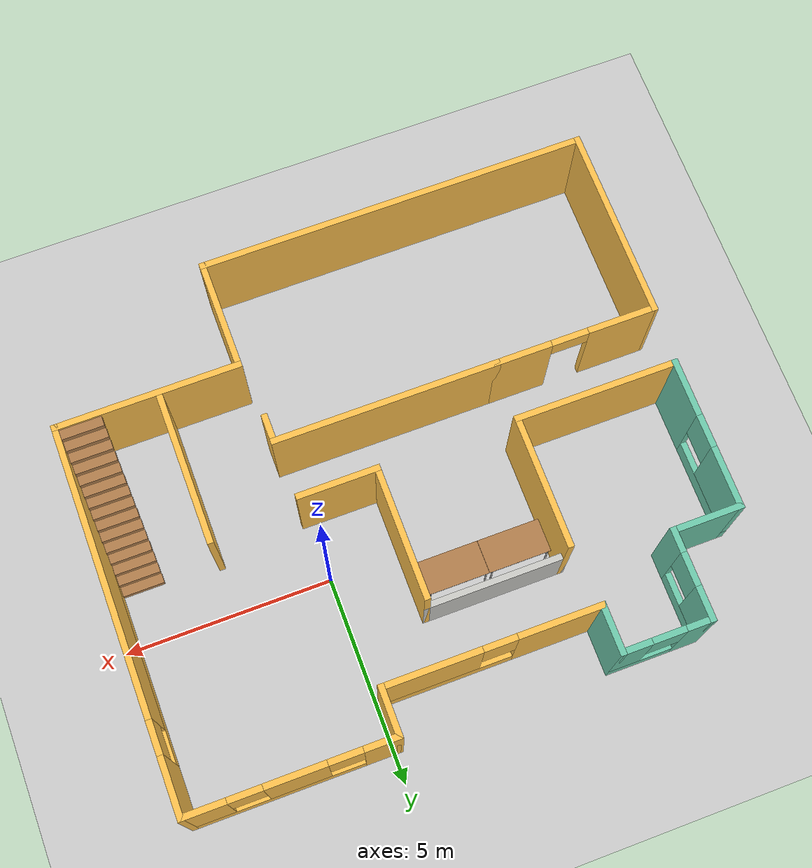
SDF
<sdf version="1.6">
 <world name="default">
  <model name="ground_plane">
   <static>1</static>
   <link name="link">
    <collision name="collision">
     <geometry><plane><normal>0 0 1</normal><size>100 100</size></plane></geometry>
     <surface><friction><ode><mu>100</mu><mu2>50</mu2></ode></friction></surface>
    </collision>
    <visual name="visual">
     <cast_shadows>0</cast_shadows>
     <geometry><plane><normal>0 0 1</normal><size>100 100</size></plane></geometry>
     <material>
      <script><uri>file://media/materials/scripts/gazebo.material</uri><name>Gazebo/Grey</name></script>
     </material>
    </visual>
   </link>
  </model>
  <model name="building">
   <pose>-2.14951 -1.63001 0 0 -0 0</pose>
   <link name="Stairs_0">
    <visual name="Stairs_0_Visual_0">
     <pose>6.28895 0.235116 0.083333 0 -0 0</pose>
     <geometry><box><size>1 0.233333 0.166667</size></box></geometry>
     <material>
      <script><uri>file://media/materials/scripts/gazebo.material</uri><name>Gazebo/Wood</name></script>
      <ambient>0.996078 0.47451 0.0196078 1</ambient>
     </material>
     <meta><layer>0</layer></meta>
    </visual>
    <collision name="Stairs_0_Collision_0">
     <geometry><box><size>1 0.233333 0.166667</size></box></geometry>
     <pose>6.28895 0.235116 0.083333 0 -0 0</pose>
    </collision>
    <visual name="Stairs_0_Visual_1">
     <pose>6.28895 0.001782 0.25 0 -0 0</pose>
     <geometry><box><size>1 0.233333 0.166667</size></box></geometry>
     <material>
      <script><uri>file://media/materials/scripts/gazebo.material</uri><name>Gazebo/Wood</name></script>
      <ambient>0.996078 0.47451 0.0196078 1</ambient>
     </material>
     <meta><layer>0</layer></meta>
    </visual>
    <collision name="Stairs_0_Collision_1">
     <geometry><box><size>1 0.233333 0.166667</size></box></geometry>
     <pose>6.28895 0.001782 0.25 0 -0 0</pose>
    </collision>
    <visual name="Stairs_0_Visual_2">
     <pose>6.28895 -0.231551 0.416667 0 -0 0</pose>
     <geometry><box><size>1 0.233333 0.166667</size></box></geometry>
     <material>
      <script><uri>file://media/materials/scripts/gazebo.material</uri><name>Gazebo/Wood</name></script>
      <ambient>0.996078 0.47451 0.0196078 1</ambient>
     </material>
     <meta><layer>0</layer></meta>
    </visual>
    <collision name="Stairs_0_Collision_2">
     <geometry><box><size>1 0.233333 0.166667</size></box></geometry>
     <pose>6.28895 -0.231551 0.416667 0 -0 0</pose>
    </collision>
    <visual name="Stairs_0_Visual_3">
     <pose>6.28895 -0.464884 0.583333 0 -0 0</pose>
     <geometry><box><size>1 0.233333 0.166667</size></box></geometry>
     <material>
      <script><uri>file://media/materials/scripts/gazebo.material</uri><name>Gazebo/Wood</name></script>
      <ambient>0.996078 0.47451 0.0196078 1</ambient>
     </material>
     <meta><layer>0</layer></meta>
    </visual>
    <collision name="Stairs_0_Collision_3">
     <geometry><box><size>1 0.233333 0.166667</size></box></geometry>
     <pose>6.28895 -0.464884 0.583333 0 -0 0</pose>
    </collision>
    <visual name="Stairs_0_Visual_4">
     <pose>6.28895 -0.698218 0.75 0 -0 0</pose>
     <geometry><box><size>1 0.233333 0.166667</size></box></geometry>
     <material>
      <script><uri>file://media/materials/scripts/gazebo.material</uri><name>Gazebo/Wood</name></script>
      <ambient>0.996078 0.47451 0.0196078 1</ambient>
     </material>
     <meta><layer>0</layer></meta>
    </visual>
    <collision name="Stairs_0_Collision_4">
     <geometry><box><size>1 0.233333 0.166667</size></box></geometry>
     <pose>6.28895 -0.698218 0.75 0 -0 0</pose>
    </collision>
    <visual name="Stairs_0_Visual_5">
     <pose>6.28895 -0.931551 0.916667 0 -0 0</pose>
     <geometry><box><size>1 0.233333 0.166667</size></box></geometry>
     <material>
      <script><uri>file://media/materials/scripts/gazebo.material</uri><name>Gazebo/Wood</name></script>
      <ambient>0.996078 0.47451 0.0196078 1</ambient>
     </material>
     <meta><layer>0</layer></meta>
    </visual>
    <collision name="Stairs_0_Collision_5">
     <geometry><box><size>1 0.233333 0.166667</size></box></geometry>
     <pose>6.28895 -0.931551 0.916667 0 -0 0</pose>
    </collision>
    <visual name="Stairs_0_Visual_6">
     <pose>6.28895 -1.16488 1.08333 0 -0 0</pose>
     <geometry><box><size>1 0.233333 0.166667</size></box></geometry>
     <material>
      <script><uri>file://media/materials/scripts/gazebo.material</uri><name>Gazebo/Wood</name></script>
      <ambient>0.996078 0.47451 0.0196078 1</ambient>
     </material>
     <meta><layer>0</layer></meta>
    </visual>
    <collision name="Stairs_0_Collision_6">
     <geometry><box><size>1 0.233333 0.166667</size></box></geometry>
     <pose>6.28895 -1.16488 1.08333 0 -0 0</pose>
    </collision>
    <visual name="Stairs_0_Visual_7">
     <pose>6.28895 -1.39822 1.25 0 -0 0</pose>
     <geometry><box><size>1 0.233333 0.166667</size></box></geometry>
     <material>
      <script><uri>file://media/materials/scripts/gazebo.material</uri><name>Gazebo/Wood</name></script>
      <ambient>0.996078 0.47451 0.0196078 1</ambient>
     </material>
     <meta><layer>0</layer></meta>
    </visual>
    <collision name="Stairs_0_Collision_7">
     <geometry><box><size>1 0.233333 0.166667</size></box></geometry>
     <pose>6.28895 -1.39822 1.25 0 -0 0</pose>
    </collision>
    <visual name="Stairs_0_Visual_8">
     <pose>6.28895 -1.63155 1.41667 0 -0 0</pose>
     <geometry><box><size>1 0.233333 0.166667</size></box></geometry>
     <material>
      <script><uri>file://media/materials/scripts/gazebo.material</uri><name>Gazebo/Wood</name></script>
      <ambient>0.996078 0.47451 0.0196078 1</ambient>
     </material>
     <meta><layer>0</layer></meta>
    </visual>
    <collision name="Stairs_0_Collision_8">
     <geometry><box><size>1 0.233333 0.166667</size></box></geometry>
     <pose>6.28895 -1.63155 1.41667 0 -0 0</pose>
    </collision>
    <visual name="Stairs_0_Visual_9">
     <pose>6.28895 -1.86488 1.58333 0 -0 0</pose>
     <geometry><box><size>1 0.233333 0.166667</size></box></geometry>
     <material>
      <script><uri>file://media/materials/scripts/gazebo.material</uri><name>Gazebo/Wood</name></script>
      <ambient>0.996078 0.47451 0.0196078 1</ambient>
     </material>
     <meta><layer>0</layer></meta>
    </visual>
    <collision name="Stairs_0_Collision_9">
     <geometry><box><size>1 0.233333 0.166667</size></box></geometry>
     <pose>6.28895 -1.86488 1.58333 0 -0 0</pose>
    </collision>
    <visual name="Stairs_0_Visual_10">
     <pose>6.28895 -2.09822 1.75 0 -0 0</pose>
     <geometry><box><size>1 0.233333 0.166667</size></box></geometry>
     <material>
      <script><uri>file://media/materials/scripts/gazebo.material</uri><name>Gazebo/Wood</name></script>
      <ambient>0.996078 0.47451 0.0196078 1</ambient>
     </material>
     <meta><layer>0</layer></meta>
    </visual>
    <collision name="Stairs_0_Collision_10">
     <geometry><box><size>1 0.233333 0.166667</size></box></geometry>
     <pose>6.28895 -2.09822 1.75 0 -0 0</pose>
    </collision>
    <visual name="Stairs_0_Visual_11">
     <pose>6.28895 -2.33155 1.91667 0 -0 0</pose>
     <geometry><box><size>1 0.233333 0.166667</size></box></geometry>
     <material>
      <script><uri>file://media/materials/scripts/gazebo.material</uri><name>Gazebo/Wood</name></script>
      <ambient>0.996078 0.47451 0.0196078 1</ambient>
     </material>
     <meta><layer>0</layer></meta>
    </visual>
    <collision name="Stairs_0_Collision_11">
     <geometry><box><size>1 0.233333 0.166667</size></box></geometry>
     <pose>6.28895 -2.33155 1.91667 0 -0 0</pose>
    </collision>
    <visual name="Stairs_0_Visual_12">
     <pose>6.28895 -2.56488 2.08333 0 -0 0</pose>
     <geometry><box><size>1 0.233333 0.166667</size></box></geometry>
     <material>
      <script><uri>file://media/materials/scripts/gazebo.material</uri><name>Gazebo/Wood</name></script>
      <ambient>0.996078 0.47451 0.0196078 1</ambient>
     </material>
     <meta><layer>0</layer></meta>
    </visual>
    <collision name="Stairs_0_Collision_12">
     <geometry><box><size>1 0.233333 0.166667</size></box></geometry>
     <pose>6.28895 -2.56488 2.08333 0 -0 0</pose>
    </collision>
    <visual name="Stairs_0_Visual_13">
     <pose>6.28895 -2.79822 2.25 0 -0 0</pose>
     <geometry><box><size>1 0.233333 0.166667</size></box></geometry>
     <material>
      <script><uri>file://media/materials/scripts/gazebo.material</uri><name>Gazebo/Wood</name></script>
      <ambient>0.996078 0.47451 0.0196078 1</ambient>
     </material>
     <meta><layer>0</layer></meta>
    </visual>
    <collision name="Stairs_0_Collision_13">
     <geometry><box><size>1 0.233333 0.166667</size></box></geometry>
     <pose>6.28895 -2.79822 2.25 0 -0 0</pose>
    </collision>
    <visual name="Stairs_0_Visual_14">
     <pose>6.28895 -3.03155 2.41667 0 -0 0</pose>
     <geometry><box><size>1 0.233333 0.166667</size></box></geometry>
     <material>
      <script><uri>file://media/materials/scripts/gazebo.material</uri><name>Gazebo/Wood</name></script>
      <ambient>0.996078 0.47451 0.0196078 1</ambient>
     </material>
     <meta><layer>0</layer></meta>
    </visual>
    <collision name="Stairs_0_Collision_14">
     <geometry><box><size>1 0.233333 0.166667</size></box></geometry>
     <pose>6.28895 -3.03155 2.41667 0 -0 0</pose>
    </collision>
   </link>
   <link name="Wall_11">
    <collision name="Wall_11_Collision">
     <geometry><box><size>1.75 0.15 2.5</size></box></geometry>
     <pose>0 0 1.25 0 -0 0</pose>
    </collision>
    <visual name="Wall_11_Visual">
     <pose>0 0 1.25 0 -0 0</pose>
     <geometry><box><size>1.75 0.15 2.5</size></box></geometry>
     <material>
      <script><uri>file://media/materials/scripts/gazebo.material</uri><name>Gazebo/Grey</name></script>
      <ambient>0.435294 0.796078 0.67451 1</ambient>
     </material>
     <meta><layer>0</layer></meta>
    </visual>
    <pose>-5.98549 3.75001 0 0 -0 0</pose>
   </link>
   <link name="Wall_12">
    <pose>-5.18549 4.80001 0 0 -0 1.5708</pose>
    <visual name="Wall_12_Visual_0">
     <pose>-0.822466 0 1.25 0 -0 0</pose>
     <geometry><box><size>0.605068 0.15 2.5</size></box></geometry>
     <material>
      <script><uri>file://media/materials/scripts/gazebo.material</uri><name>Gazebo/Grey</name></script>
      <ambient>0.435294 0.796078 0.67451 1</ambient>
     </material>
     <meta><layer>0</layer></meta>
    </visual>
    <collision name="Wall_12_Collision_0">
     <geometry><box><size>0.605068 0.15 2.5</size></box></geometry>
     <pose>-0.822466 0 1.25 0 -0 0</pose>
    </collision>
    <visual name="Wall_12_Visual_1">
     <pose>0.302534 0 0.25 0 -0 0</pose>
     <geometry><box><size>1.64493 0.15 0.5</size></box></geometry>
     <material>
      <script><uri>file://media/materials/scripts/gazebo.material</uri><name>Gazebo/Grey</name></script>
      <ambient>0.435294 0.796078 0.67451 1</ambient>
     </material>
     <meta><layer>0</layer></meta>
    </visual>
    <collision name="Wall_12_Collision_1">
     <geometry><box><size>1.64493 0.15 0.5</size></box></geometry>
     <pose>0.302534 0 0.25 0 -0 0</pose>
    </collision>
    <visual name="Wall_12_Visual_2">
     <pose>0.702534 0 1.5 0 -0 0</pose>
     <geometry><box><size>0.844932 0.15 2</size></box></geometry>
     <material>
      <script><uri>file://media/materials/scripts/gazebo.material</uri><name>Gazebo/Grey</name></script>
      <ambient>0.435294 0.796078 0.67451 1</ambient>
     </material>
     <meta><layer>0</layer></meta>
    </visual>
    <collision name="Wall_12_Collision_2">
     <geometry><box><size>0.844932 0.15 2</size></box></geometry>
     <pose>0.702534 0 1.5 0 -0 0</pose>
    </collision>
    <visual name="Wall_12_Visual_3">
     <pose>-0.119932 0 1.9 0 -0 0</pose>
     <geometry><box><size>0.8 0.15 1.2</size></box></geometry>
     <material>
      <script><uri>file://media/materials/scripts/gazebo.material</uri><name>Gazebo/Grey</name></script>
      <ambient>0.435294 0.796078 0.67451 1</ambient>
     </material>
     <meta><layer>0</layer></meta>
    </visual>
    <collision name="Wall_12_Collision_3">
     <geometry><box><size>0.8 0.15 1.2</size></box></geometry>
     <pose>-0.119932 0 1.9 0 -0 0</pose>
    </collision>
   </link>
   <link name="Wall_13">
    <pose>-4.13549 5.85001 0 0 -0 0</pose>
    <visual name="Wall_13_Visual_0">
     <pose>-0.782955 0 1.25 0 -0 0</pose>
     <geometry><box><size>0.684089 0.15 2.5</size></box></geometry>
     <material>
      <script><uri>file://media/materials/scripts/gazebo.material</uri><name>Gazebo/Grey</name></script>
      <ambient>0.435294 0.796078 0.67451 1</ambient>
     </material>
     <meta><layer>0</layer></meta>
    </visual>
    <collision name="Wall_13_Collision_0">
     <geometry><box><size>0.684089 0.15 2.5</size></box></geometry>
     <pose>-0.782955 0 1.25 0 -0 0</pose>
    </collision>
    <visual name="Wall_13_Visual_1">
     <pose>0.342045 0 0.25 0 -0 0</pose>
     <geometry><box><size>1.56591 0.15 0.5</size></box></geometry>
     <material>
      <script><uri>file://media/materials/scripts/gazebo.material</uri><name>Gazebo/Grey</name></script>
      <ambient>0.435294 0.796078 0.67451 1</ambient>
     </material>
     <meta><layer>0</layer></meta>
    </visual>
    <collision name="Wall_13_Collision_1">
     <geometry><box><size>1.56591 0.15 0.5</size></box></geometry>
     <pose>0.342045 0 0.25 0 -0 0</pose>
    </collision>
    <visual name="Wall_13_Visual_2">
     <pose>0.742045 0 1.5 0 -0 0</pose>
     <geometry><box><size>0.765911 0.15 2</size></box></geometry>
     <material>
      <script><uri>file://media/materials/scripts/gazebo.material</uri><name>Gazebo/Grey</name></script>
      <ambient>0.435294 0.796078 0.67451 1</ambient>
     </material>
     <meta><layer>0</layer></meta>
    </visual>
    <collision name="Wall_13_Collision_2">
     <geometry><box><size>0.765911 0.15 2</size></box></geometry>
     <pose>0.742045 0 1.5 0 -0 0</pose>
    </collision>
    <visual name="Wall_13_Visual_3">
     <pose>-0.040911 0 1.9 0 -0 0</pose>
     <geometry><box><size>0.8 0.15 1.2</size></box></geometry>
     <material>
      <script><uri>file://media/materials/scripts/gazebo.material</uri><name>Gazebo/Grey</name></script>
      <ambient>0.435294 0.796078 0.67451 1</ambient>
     </material>
     <meta><layer>0</layer></meta>
    </visual>
    <collision name="Wall_13_Collision_3">
     <geometry><box><size>0.8 0.15 1.2</size></box></geometry>
     <pose>-0.040911 0 1.9 0 -0 0</pose>
    </collision>
   </link>
   <link name="Wall_14">
    <collision name="Wall_14_Collision">
     <geometry><box><size>1.25 0.15 2.5</size></box></geometry>
     <pose>0 0 1.25 0 -0 0</pose>
    </collision>
    <visual name="Wall_14_Visual">
     <pose>0 0 1.25 0 -0 0</pose>
     <geometry><box><size>1.25 0.15 2.5</size></box></geometry>
     <material>
      <script><uri>file://media/materials/scripts/gazebo.material</uri><name>Gazebo/Grey</name></script>
      <ambient>0.435294 0.796078 0.67451 1</ambient>
     </material>
     <meta><layer>0</layer></meta>
    </visual>
    <pose>-3.08549 5.30001 0 0 0 -1.5708</pose>
   </link>
   <link name="Wall_15">
    <pose>-0.535492 4.75001 0 0 -0 0</pose>
    <visual name="Wall_15_Visual_0">
     <pose>-1.59834 0 1.25 0 -0 0</pose>
     <geometry><box><size>2.05332 0.15 2.5</size></box></geometry>
     <material>
      <script><uri>file://media/materials/scripts/gazebo.material</uri><name>Gazebo/Grey</name></script>
      <ambient>1 0.764706 0.305882 1</ambient>
     </material>
     <meta><layer>0</layer></meta>
    </visual>
    <collision name="Wall_15_Collision_0">
     <geometry><box><size>2.05332 0.15 2.5</size></box></geometry>
     <pose>-1.59834 0 1.25 0 -0 0</pose>
    </collision>
    <visual name="Wall_15_Visual_1">
     <pose>1.02666 0 0.25 0 -0 0</pose>
     <geometry><box><size>3.19668 0.15 0.5</size></box></geometry>
     <material>
      <script><uri>file://media/materials/scripts/gazebo.material</uri><name>Gazebo/Grey</name></script>
      <ambient>1 0.764706 0.305882 1</ambient>
     </material>
     <meta><layer>0</layer></meta>
    </visual>
    <collision name="Wall_15_Collision_1">
     <geometry><box><size>3.19668 0.15 0.5</size></box></geometry>
     <pose>1.02666 0 0.25 0 -0 0</pose>
    </collision>
    <visual name="Wall_15_Visual_2">
     <pose>1.42666 0 1.5 0 -0 0</pose>
     <geometry><box><size>2.39668 0.15 2</size></box></geometry>
     <material>
      <script><uri>file://media/materials/scripts/gazebo.material</uri><name>Gazebo/Grey</name></script>
      <ambient>1 0.764706 0.305882 1</ambient>
     </material>
     <meta><layer>0</layer></meta>
    </visual>
    <collision name="Wall_15_Collision_2">
     <geometry><box><size>2.39668 0.15 2</size></box></geometry>
     <pose>1.42666 0 1.5 0 -0 0</pose>
    </collision>
    <visual name="Wall_15_Visual_3">
     <pose>-0.171681 0 1.9 0 -0 0</pose>
     <geometry><box><size>0.8 0.15 1.2</size></box></geometry>
     <material>
      <script><uri>file://media/materials/scripts/gazebo.material</uri><name>Gazebo/Grey</name></script>
      <ambient>1 0.764706 0.305882 1</ambient>
     </material>
     <meta><layer>0</layer></meta>
    </visual>
    <collision name="Wall_15_Collision_3">
     <geometry><box><size>0.8 0.15 1.2</size></box></geometry>
     <pose>-0.171681 0 1.9 0 -0 0</pose>
    </collision>
   </link>
   <link name="Wall_16">
    <collision name="Wall_16_Collision">
     <geometry><box><size>1.25 0.15 2.5</size></box></geometry>
     <pose>0 0 1.25 0 -0 0</pose>
    </collision>
    <visual name="Wall_16_Visual">
     <pose>0 0 1.25 0 -0 0</pose>
     <geometry><box><size>1.25 0.15 2.5</size></box></geometry>
     <material>
      <script><uri>file://media/materials/scripts/gazebo.material</uri><name>Gazebo/Grey</name></script>
      <ambient>1 0.764706 0.305882 1</ambient>
     </material>
     <meta><layer>0</layer></meta>
    </visual>
    <pose>2.01451 5.30001 0 0 -0 1.5708</pose>
   </link>
   <link name="Wall_17">
    <pose>4.43951 5.85001 0 0 -0 0</pose>
    <visual name="Wall_17_Visual_0">
     <pose>-2.05936 0 1.25 0 -0 0</pose>
     <geometry><box><size>0.881289 0.15 2.5</size></box></geometry>
     <material>
      <script><uri>file://media/materials/scripts/gazebo.material</uri><name>Gazebo/Grey</name></script>
      <ambient>1 0.764706 0.305882 1</ambient>
     </material>
     <meta><layer>0</layer></meta>
    </visual>
    <collision name="Wall_17_Collision_0">
     <geometry><box><size>0.881289 0.15 2.5</size></box></geometry>
     <pose>-2.05936 0 1.25 0 -0 0</pose>
    </collision>
    <visual name="Wall_17_Visual_1">
     <pose>0.440644 0 0.25 0 -0 0</pose>
     <geometry><box><size>4.11871 0.15 0.5</size></box></geometry>
     <material>
      <script><uri>file://media/materials/scripts/gazebo.material</uri><name>Gazebo/Grey</name></script>
      <ambient>1 0.764706 0.305882 1</ambient>
     </material>
     <meta><layer>0</layer></meta>
    </visual>
    <collision name="Wall_17_Collision_1">
     <geometry><box><size>4.11871 0.15 0.5</size></box></geometry>
     <pose>0.440644 0 0.25 0 -0 0</pose>
    </collision>
    <visual name="Wall_17_Visual_2">
     <pose>-0.10053 0 1.5 0 -0 0</pose>
     <geometry><box><size>1.43636 0.15 2</size></box></geometry>
     <material>
      <script><uri>file://media/materials/scripts/gazebo.material</uri><name>Gazebo/Grey</name></script>
      <ambient>1 0.764706 0.305882 1</ambient>
     </material>
     <meta><layer>0</layer></meta>
    </visual>
    <collision name="Wall_17_Collision_2">
     <geometry><box><size>1.43636 0.15 2</size></box></geometry>
     <pose>-0.10053 0 1.5 0 -0 0</pose>
    </collision>
    <visual name="Wall_17_Visual_3">
     <pose>1.95883 0 1.5 0 -0 0</pose>
     <geometry><box><size>1.08235 0.15 2</size></box></geometry>
     <material>
      <script><uri>file://media/materials/scripts/gazebo.material</uri><name>Gazebo/Grey</name></script>
      <ambient>1 0.764706 0.305882 1</ambient>
     </material>
     <meta><layer>0</layer></meta>
    </visual>
    <collision name="Wall_17_Collision_3">
     <geometry><box><size>1.08235 0.15 2</size></box></geometry>
     <pose>1.95883 0 1.5 0 -0 0</pose>
    </collision>
    <visual name="Wall_17_Visual_4">
     <pose>-1.21871 0 1.9 0 -0 0</pose>
     <geometry><box><size>0.8 0.15 1.2</size></box></geometry>
     <material>
      <script><uri>file://media/materials/scripts/gazebo.material</uri><name>Gazebo/Grey</name></script>
      <ambient>1 0.764706 0.305882 1</ambient>
     </material>
     <meta><layer>0</layer></meta>
    </visual>
    <collision name="Wall_17_Collision_4">
     <geometry><box><size>0.8 0.15 1.2</size></box></geometry>
     <pose>-1.21871 0 1.9 0 -0 0</pose>
    </collision>
    <visual name="Wall_17_Visual_5">
     <pose>1.01765 0 1.9 0 -0 0</pose>
     <geometry><box><size>0.8 0.15 1.2</size></box></geometry>
     <material>
      <script><uri>file://media/materials/scripts/gazebo.material</uri><name>Gazebo/Grey</name></script>
      <ambient>1 0.764706 0.305882 1</ambient>
     </material>
     <meta><layer>0</layer></meta>
    </visual>
    <collision name="Wall_17_Collision_5">
     <geometry><box><size>0.8 0.15 1.2</size></box></geometry>
     <pose>1.01765 0 1.9 0 -0 0</pose>
    </collision>
   </link>
   <link name="Wall_18">
    <pose>6.86451 1.30001 0 0 0 -1.5708</pose>
    <visual name="Wall_18_Visual_0">
     <pose>-3.90149 0 1.25 0 -0 0</pose>
     <geometry><box><size>1.44703 0.15 2.5</size></box></geometry>
     <material>
      <script><uri>file://media/materials/scripts/gazebo.material</uri><name>Gazebo/Grey</name></script>
      <ambient>1 0.764706 0.305882 1</ambient>
     </material>
     <meta><layer>0</layer></meta>
    </visual>
    <collision name="Wall_18_Collision_0">
     <geometry><box><size>1.44703 0.15 2.5</size></box></geometry>
     <pose>-3.90149 0 1.25 0 -0 0</pose>
    </collision>
    <visual name="Wall_18_Visual_1">
     <pose>0.723515 0 0.25 0 -0 0</pose>
     <geometry><box><size>7.80297 0.15 0.5</size></box></geometry>
     <material>
      <script><uri>file://media/materials/scripts/gazebo.material</uri><name>Gazebo/Grey</name></script>
      <ambient>1 0.764706 0.305882 1</ambient>
     </material>
     <meta><layer>0</layer></meta>
    </visual>
    <collision name="Wall_18_Collision_1">
     <geometry><box><size>7.80297 0.15 0.5</size></box></geometry>
     <pose>0.723515 0 0.25 0 -0 0</pose>
    </collision>
    <visual name="Wall_18_Visual_2">
     <pose>1.12352 0 1.5 0 -0 0</pose>
     <geometry><box><size>7.00297 0.15 2</size></box></geometry>
     <material>
      <script><uri>file://media/materials/scripts/gazebo.material</uri><name>Gazebo/Grey</name></script>
      <ambient>1 0.764706 0.305882 1</ambient>
     </material>
     <meta><layer>0</layer></meta>
    </visual>
    <collision name="Wall_18_Collision_2">
     <geometry><box><size>7.00297 0.15 2</size></box></geometry>
     <pose>1.12352 0 1.5 0 -0 0</pose>
    </collision>
    <visual name="Wall_18_Visual_3">
     <pose>-2.77797 0 1.9 0 -0 0</pose>
     <geometry><box><size>0.8 0.15 1.2</size></box></geometry>
     <material>
      <script><uri>file://media/materials/scripts/gazebo.material</uri><name>Gazebo/Grey</name></script>
      <ambient>1 0.764706 0.305882 1</ambient>
     </material>
     <meta><layer>0</layer></meta>
    </visual>
    <collision name="Wall_18_Collision_3">
     <geometry><box><size>0.8 0.15 1.2</size></box></geometry>
     <pose>-2.77797 0 1.9 0 -0 0</pose>
    </collision>
   </link>
   <link name="Wall_19">
    <collision name="Wall_19_Collision">
     <geometry><box><size>4.5 0.15 2.5</size></box></geometry>
     <pose>0 0 1.25 0 -0 0</pose>
    </collision>
    <visual name="Wall_19_Visual">
     <pose>0 0 1.25 0 -0 0</pose>
     <geometry><box><size>4.5 0.15 2.5</size></box></geometry>
     <material>
      <script><uri>file://media/materials/scripts/gazebo.material</uri><name>Gazebo/Grey</name></script>
      <ambient>1 0.764706 0.305882 1</ambient>
     </material>
     <meta><layer>0</layer></meta>
    </visual>
    <pose>4.68951 -3.24999 0 0 -0 3.14159</pose>
   </link>
   <link name="Wall_20">
    <collision name="Wall_20_Collision">
     <geometry><box><size>2.75 0.15 2.5</size></box></geometry>
     <pose>0 0 1.25 0 -0 0</pose>
    </collision>
    <visual name="Wall_20_Visual">
     <pose>0 0 1.25 0 -0 0</pose>
     <geometry><box><size>2.75 0.15 2.5</size></box></geometry>
     <material>
      <script><uri>file://media/materials/scripts/gazebo.material</uri><name>Gazebo/Grey</name></script>
      <ambient>1 0.764706 0.305882 1</ambient>
     </material>
     <meta><layer>0</layer></meta>
    </visual>
    <pose>2.51451 -4.54999 0 0 0 -1.5708</pose>
   </link>
   <link name="Wall_21">
    <collision name="Wall_21_Collision">
     <geometry><box><size>9.529 0.15 2.5</size></box></geometry>
     <pose>0 0 1.25 0 -0 0</pose>
    </collision>
    <visual name="Wall_21_Visual">
     <pose>0 0 1.25 0 -0 0</pose>
     <geometry><box><size>9.529 0.15 2.5</size></box></geometry>
     <material>
      <script><uri>file://media/materials/scripts/gazebo.material</uri><name>Gazebo/Grey</name></script>
      <ambient>1 0.764706 0.305882 1</ambient>
     </material>
     <meta><layer>0</layer></meta>
    </visual>
    <pose>-2.17499 -5.84999 0 0 -0 3.14159</pose>
   </link>
   <link name="Wall_22">
    <collision name="Wall_22_Collision">
     <geometry><box><size>4.75 0.15 2.5</size></box></geometry>
     <pose>0 0 1.25 0 -0 0</pose>
    </collision>
    <visual name="Wall_22_Visual">
     <pose>0 0 1.25 0 -0 0</pose>
     <geometry><box><size>4.75 0.15 2.5</size></box></geometry>
     <material>
      <script><uri>file://media/materials/scripts/gazebo.material</uri><name>Gazebo/Grey</name></script>
      <ambient>1 0.764706 0.305882 1</ambient>
     </material>
     <meta><layer>0</layer></meta>
    </visual>
    <pose>-6.86399 -3.54999 0 0 -0 1.57058</pose>
   </link>
   <link name="Wall_24">
    <collision name="Wall_24_Collision">
     <geometry><box><size>4 0.15 2.5</size></box></geometry>
     <pose>0 0 1.25 0 -0 0</pose>
    </collision>
    <visual name="Wall_24_Visual">
     <pose>0 0 1.25 0 -0 0</pose>
     <geometry><box><size>4 0.15 2.5</size></box></geometry>
     <material>
      <script><uri>file://media/materials/scripts/gazebo.material</uri><name>Gazebo/Grey</name></script>
      <ambient>1 0.764706 0.305882 1</ambient>
     </material>
     <meta><layer>0</layer></meta>
    </visual>
    <pose>-4.86049 0.150008 0 0 -0 0</pose>
   </link>
   <link name="Wall_27">
    <collision name="Wall_27_Collision">
     <geometry><box><size>3.25 0.15 2.5</size></box></geometry>
     <pose>0 0 1.25 0 -0 0</pose>
    </collision>
    <visual name="Wall_27_Visual">
     <pose>0 0 1.25 0 -0 0</pose>
     <geometry><box><size>3.25 0.15 2.5</size></box></geometry>
     <material>
      <script><uri>file://media/materials/scripts/gazebo.material</uri><name>Gazebo/Grey</name></script>
      <ambient>1 0.764706 0.305882 1</ambient>
     </material>
     <meta><layer>0</layer></meta>
    </visual>
    <pose>-2.93549 1.70001 0 0 -0 1.5708</pose>
   </link>
   <link name="Wall_28">
    <collision name="Wall_28_Collision">
     <geometry><box><size>3.5 0.15 1.5</size></box></geometry>
     <pose>0 0 0.75 0 -0 0</pose>
    </collision>
    <visual name="Wall_28_Visual">
     <pose>0 0 0.75 0 -0 0</pose>
     <geometry><box><size>3.5 0.15 1.5</size></box></geometry>
     <material>
      <script><uri>file://media/materials/scripts/gazebo.material</uri><name>Gazebo/CeilingTiled</name></script>
      <ambient>1 0.764706 0.305882 1</ambient>
     </material>
     <meta><layer>0</layer></meta>
    </visual>
    <pose>-1.26049 3.25001 0 0 -0 0</pose>
   </link>
   <link name="Wall_31">
    <pose>-4.92449 -1.24999 0 0 -0 0</pose>
    <visual name="Wall_31_Visual_0">
     <pose>-1.15892 0 1.25 0 -0 0</pose>
     <geometry><box><size>1.71048 0.15 2.5</size></box></geometry>
     <material>
      <script><uri>file://media/materials/scripts/gazebo.material</uri><name>Gazebo/Grey</name></script>
      <ambient>1 0.764706 0.305882 1</ambient>
     </material>
     <meta><layer>0</layer></meta>
    </visual>
    <collision name="Wall_31_Collision_0">
     <geometry><box><size>1.71048 0.15 2.5</size></box></geometry>
     <pose>-1.15892 0 1.25 0 -0 0</pose>
    </collision>
    <visual name="Wall_31_Visual_1">
     <pose>1.30524 0 1.25 0 -0 0</pose>
     <geometry><box><size>1.41785 0.15 2.5</size></box></geometry>
     <material>
      <script><uri>file://media/materials/scripts/gazebo.material</uri><name>Gazebo/Grey</name></script>
      <ambient>1 0.764706 0.305882 1</ambient>
     </material>
     <meta><layer>0</layer></meta>
    </visual>
    <collision name="Wall_31_Collision_1">
     <geometry><box><size>1.41785 0.15 2.5</size></box></geometry>
     <pose>1.30524 0 1.25 0 -0 0</pose>
    </collision>
    <visual name="Wall_31_Visual_2">
     <pose>0.146316 0 2.25 0 -0 0</pose>
     <geometry><box><size>0.9 0.15 0.5</size></box></geometry>
     <material>
      <script><uri>file://media/materials/scripts/gazebo.material</uri><name>Gazebo/Grey</name></script>
      <ambient>1 0.764706 0.305882 1</ambient>
     </material>
     <meta><layer>0</layer></meta>
    </visual>
    <collision name="Wall_31_Collision_2">
     <geometry><box><size>0.9 0.15 0.5</size></box></geometry>
     <pose>0.146316 0 2.25 0 -0 0</pose>
    </collision>
   </link>
   <link name="Wall_32">
    <collision name="Wall_32_Collision">
     <geometry><box><size>5.5 0.15 2.5</size></box></geometry>
     <pose>0 0 1.25 0 -0 0</pose>
    </collision>
    <visual name="Wall_32_Visual">
     <pose>0 0 1.25 0 -0 0</pose>
     <geometry><box><size>5.5 0.15 2.5</size></box></geometry>
     <material>
      <script><uri>file://media/materials/scripts/gazebo.material</uri><name>Gazebo/Grey</name></script>
      <ambient>1 0.764706 0.305882 1</ambient>
     </material>
     <meta><layer>0</layer></meta>
    </visual>
    <pose>-0.310493 -1.24999 0 0 -0 0</pose>
   </link>
   <link name="Wall_33">
    <collision name="Wall_33_Collision">
     <geometry><box><size>0.75 0.15 2.5</size></box></geometry>
     <pose>0 0 1.25 0 -0 0</pose>
    </collision>
    <visual name="Wall_33_Visual">
     <pose>0 0 1.25 0 -0 0</pose>
     <geometry><box><size>0.75 0.15 2.5</size></box></geometry>
     <material>
      <script><uri>file://media/materials/scripts/gazebo.material</uri><name>Gazebo/Grey</name></script>
      <ambient>1 0.764706 0.305882 1</ambient>
     </material>
     <meta><layer>0</layer></meta>
    </visual>
    <pose>2.36451 -1.54999 0 0 0 -1.5708</pose>
   </link>
   <link name="Wall_40">
    <collision name="Wall_40_Collision">
     <geometry><box><size>3.75 0.15 2.5</size></box></geometry>
     <pose>0 0 1.25 0 -0 0</pose>
    </collision>
    <visual name="Wall_40_Visual">
     <pose>0 0 1.25 0 -0 0</pose>
     <geometry><box><size>3.75 0.15 2.5</size></box></geometry>
     <material>
      <script><uri>file://media/materials/scripts/gazebo.material</uri><name>Gazebo/Grey</name></script>
      <ambient>1 0.764706 0.305882 1</ambient>
     </material>
     <meta><layer>0</layer></meta>
    </visual>
    <pose>4.42532 -1.37584 0 0 -0 1.5708</pose>
   </link>
   <link name="Wall_43">
    <collision name="Wall_43_Collision">
     <geometry><box><size>3.25 0.15 2.5</size></box></geometry>
     <pose>0 0 1.25 0 -0 0</pose>
    </collision>
    <visual name="Wall_43_Visual">
     <pose>0 0 1.25 0 -0 0</pose>
     <geometry><box><size>3.25 0.15 2.5</size></box></geometry>
     <material>
      <script><uri>file://media/materials/scripts/gazebo.material</uri><name>Gazebo/Grey</name></script>
      <ambient>1 0.764706 0.305882 1</ambient>
     </material>
     <meta><layer>0</layer></meta>
    </visual>
    <pose>0.414508 1.70001 0 0 0 -1.5708</pose>
   </link>
   <link name="Wall_44">
    <collision name="Wall_44_Collision">
     <geometry><box><size>2 0.15 2.5</size></box></geometry>
     <pose>0 0 1.25 0 -0 0</pose>
    </collision>
    <visual name="Wall_44_Visual">
     <pose>0 0 1.25 0 -0 0</pose>
     <geometry><box><size>2 0.15 2.5</size></box></geometry>
     <material>
      <script><uri>file://media/materials/scripts/gazebo.material</uri><name>Gazebo/Grey</name></script>
      <ambient>1 0.764706 0.305882 1</ambient>
     </material>
     <meta><layer>0</layer></meta>
    </visual>
    <pose>1.33951 0.150008 0 0 -0 0</pose>
   </link>
   <link name="Wall_9">
    <pose>-6.78549 1.95001 0 0 -0 1.5708</pose>
    <visual name="Wall_9_Visual_0">
     <pose>-1.16301 0 1.25 0 -0 0</pose>
     <geometry><box><size>1.42397 0.15 2.5</size></box></geometry>
     <material>
      <script><uri>file://media/materials/scripts/gazebo.material</uri><name>Gazebo/Grey</name></script>
      <ambient>0.435294 0.796078 0.67451 1</ambient>
     </material>
     <meta><layer>0</layer></meta>
    </visual>
    <collision name="Wall_9_Collision_0">
     <geometry><box><size>1.42397 0.15 2.5</size></box></geometry>
     <pose>-1.16301 0 1.25 0 -0 0</pose>
    </collision>
    <visual name="Wall_9_Visual_1">
     <pose>0.711987 0 0.25 0 -0 0</pose>
     <geometry><box><size>2.32603 0.15 0.5</size></box></geometry>
     <material>
      <script><uri>file://media/materials/scripts/gazebo.material</uri><name>Gazebo/Grey</name></script>
      <ambient>0.435294 0.796078 0.67451 1</ambient>
     </material>
     <meta><layer>0</layer></meta>
    </visual>
    <collision name="Wall_9_Collision_1">
     <geometry><box><size>2.32603 0.15 0.5</size></box></geometry>
     <pose>0.711987 0 0.25 0 -0 0</pose>
    </collision>
    <visual name="Wall_9_Visual_2">
     <pose>1.11199 0 1.5 0 -0 0</pose>
     <geometry><box><size>1.52603 0.15 2</size></box></geometry>
     <material>
      <script><uri>file://media/materials/scripts/gazebo.material</uri><name>Gazebo/Grey</name></script>
      <ambient>0.435294 0.796078 0.67451 1</ambient>
     </material>
     <meta><layer>0</layer></meta>
    </visual>
    <collision name="Wall_9_Collision_2">
     <geometry><box><size>1.52603 0.15 2</size></box></geometry>
     <pose>1.11199 0 1.5 0 -0 0</pose>
    </collision>
    <visual name="Wall_9_Visual_3">
     <pose>-0.051026 0 1.9 0 -0 0</pose>
     <geometry><box><size>0.8 0.15 1.2</size></box></geometry>
     <material>
      <script><uri>file://media/materials/scripts/gazebo.material</uri><name>Gazebo/Grey</name></script>
      <ambient>0.435294 0.796078 0.67451 1</ambient>
     </material>
     <meta><layer>0</layer></meta>
    </visual>
    <collision name="Wall_9_Collision_3">
     <geometry><box><size>0.8 0.15 1.2</size></box></geometry>
     <pose>-0.051026 0 1.9 0 -0 0</pose>
    </collision>
   </link>
   <static>1</static>
  </model>
  <model name="table">
   <static>1</static>
   <link name="link">
    <collision name="surface">
     <pose>0 0 1 0 -0 0</pose>
     <geometry><box><size>1.5 0.8 0.03</size></box></geometry>
     <surface><friction><ode><mu>0.6</mu><mu2>0.6</mu2></ode></friction></surface>
    </collision>
    <visual name="visual1">
     <pose>0 0 1 0 -0 0</pose>
     <geometry><box><size>1.5 0.8 0.03</size></box></geometry>
     <material>
      <script><uri>file://media/materials/scripts/gazebo.material</uri><name>Gazebo/Wood</name></script>
     </material>
    </visual>
    <collision name="front_left_leg">
     <pose>0.68 0.38 0.5 0 -0 0</pose>
     <geometry><cylinder><radius>0.02</radius><length>1</length></cylinder></geometry>
    </collision>
    <visual name="front_left_leg">
     <pose>0.68 0.38 0.5 0 -0 0</pose>
     <geometry><cylinder><radius>0.02</radius><length>1</length></cylinder></geometry>
     <material>
      <script><uri>file://media/materials/scripts/gazebo.material</uri><name>Gazebo/Grey</name></script>
     </material>
    </visual>
    <collision name="front_right_leg">
     <pose>0.68 -0.38 0.5 0 -0 0</pose>
     <geometry><cylinder><radius>0.02</radius><length>1</length></cylinder></geometry>
    </collision>
    <visual name="front_right_leg">
     <pose>0.68 -0.38 0.5 0 -0 0</pose>
     <geometry><cylinder><radius>0.02</radius><length>1</length></cylinder></geometry>
     <material>
      <script><uri>file://media/materials/scripts/gazebo.material</uri><name>Gazebo/Grey</name></script>
     </material>
    </visual>
    <collision name="back_right_leg">
     <pose>-0.68 -0.38 0.5 0 -0 0</pose>
     <geometry><cylinder><radius>0.02</radius><length>1</length></cylinder></geometry>
    </collision>
    <visual name="back_right_leg">
     <pose>-0.68 -0.38 0.5 0 -0 0</pose>
     <geometry><cylinder><radius>0.02</radius><length>1</length></cylinder></geometry>
     <material>
      <script><uri>file://media/materials/scripts/gazebo.material</uri><name>Gazebo/Grey</name></script>
     </material>
    </visual>
    <collision name="back_left_leg">
     <pose>-0.68 0.38 0.5 0 -0 0</pose>
     <geometry><cylinder><radius>0.02</radius><length>1</length></cylinder></geometry>
    </collision>
    <visual name="back_left_leg">
     <pose>-0.68 0.38 0.5 0 -0 0</pose>
     <geometry><cylinder><radius>0.02</radius><length>1</length></cylinder></geometry>
     <material>
      <script><uri>file://media/materials/scripts/gazebo.material</uri><name>Gazebo/Grey</name></script>
     </material>
    </visual>
   </link>
   <pose>-4.16325 0.916936 0 0 -0 0</pose>
  </model>
  <model name="table_0">
   <static>1</static>
   <link name="link">
    <collision name="surface">
     <pose>0 0 1 0 -0 0</pose>
     <geometry><box><size>1.5 0.8 0.03</size></box></geometry>
     <surface><friction><ode><mu>0.6</mu><mu2>0.6</mu2></ode></friction></surface>
    </collision>
    <visual name="visual1">
     <pose>0 0 1 0 -0 0</pose>
     <geometry><box><size>1.5 0.8 0.03</size></box></geometry>
     <material>
      <script><uri>file://media/materials/scripts/gazebo.material</uri><name>Gazebo/Wood</name></script>
     </material>
    </visual>
    <collision name="front_left_leg">
     <pose>0.68 0.38 0.5 0 -0 0</pose>
     <geometry><cylinder><radius>0.02</radius><length>1</length></cylinder></geometry>
    </collision>
    <visual name="front_left_leg">
     <pose>0.68 0.38 0.5 0 -0 0</pose>
     <geometry><cylinder><radius>0.02</radius><length>1</length></cylinder></geometry>
     <material>
      <script><uri>file://media/materials/scripts/gazebo.material</uri><name>Gazebo/Grey</name></script>
     </material>
    </visual>
    <collision name="front_right_leg">
     <pose>0.68 -0.38 0.5 0 -0 0</pose>
     <geometry><cylinder><radius>0.02</radius><length>1</length></cylinder></geometry>
    </collision>
    <visual name="front_right_leg">
     <pose>0.68 -0.38 0.5 0 -0 0</pose>
     <geometry><cylinder><radius>0.02</radius><length>1</length></cylinder></geometry>
     <material>
      <script><uri>file://media/materials/scripts/gazebo.material</uri><name>Gazebo/Grey</name></script>
     </material>
    </visual>
    <collision name="back_right_leg">
     <pose>-0.68 -0.38 0.5 0 -0 0</pose>
     <geometry><cylinder><radius>0.02</radius><length>1</length></cylinder></geometry>
    </collision>
    <visual name="back_right_leg">
     <pose>-0.68 -0.38 0.5 0 -0 0</pose>
     <geometry><cylinder><radius>0.02</radius><length>1</length></cylinder></geometry>
     <material>
      <script><uri>file://media/materials/scripts/gazebo.material</uri><name>Gazebo/Grey</name></script>
     </material>
    </visual>
    <collision name="back_left_leg">
     <pose>-0.68 0.38 0.5 0 -0 0</pose>
     <geometry><cylinder><radius>0.02</radius><length>1</length></cylinder></geometry>
    </collision>
    <visual name="back_left_leg">
     <pose>-0.68 0.38 0.5 0 -0 0</pose>
     <geometry><cylinder><radius>0.02</radius><length>1</length></cylinder></geometry>
     <material>
      <script><uri>file://media/materials/scripts/gazebo.material</uri><name>Gazebo/Grey</name></script>
     </material>
    </visual>
   </link>
   <pose>-2.65868 0.916299 0 0 -0 0</pose>
  </model>
 </world>
</sdf>
